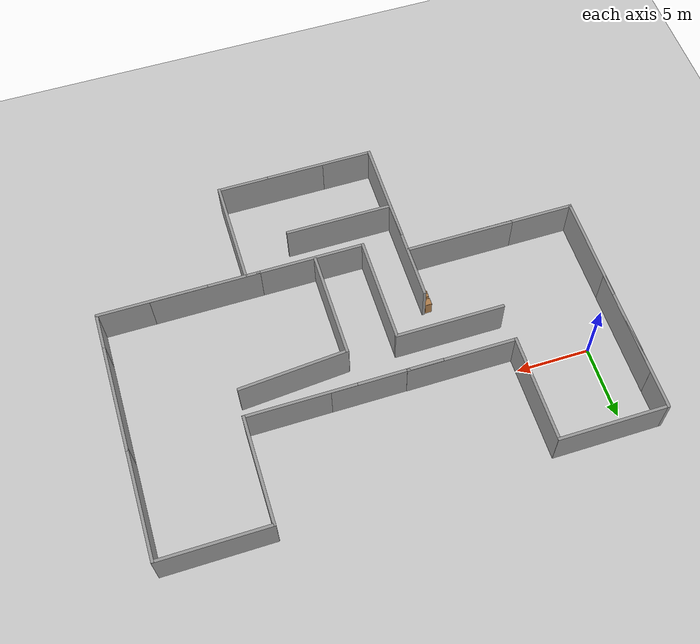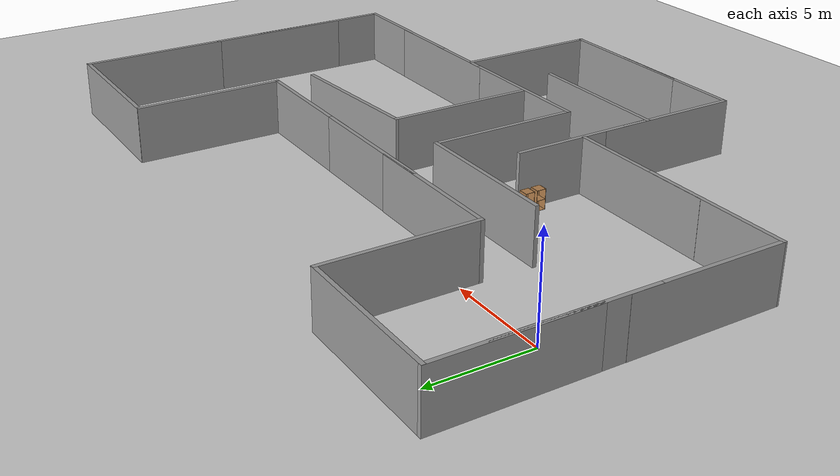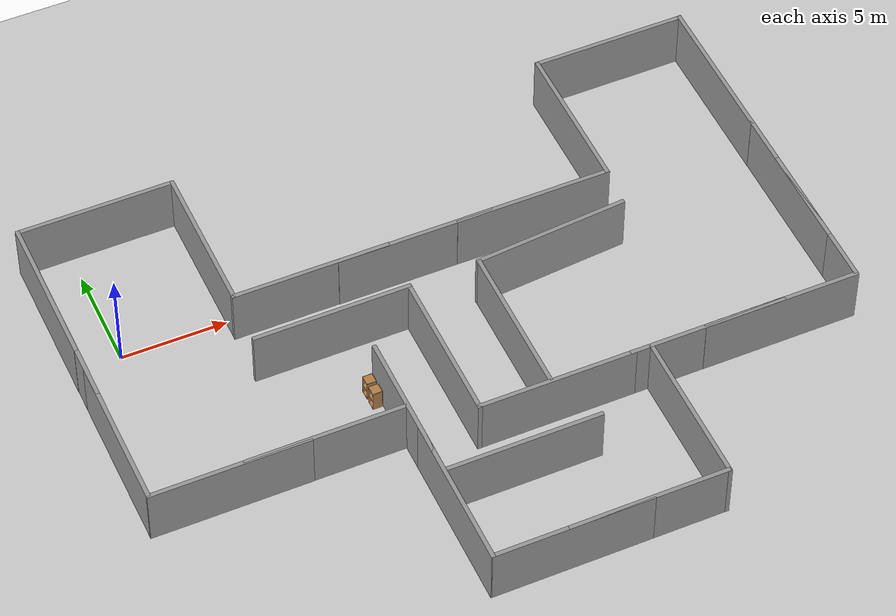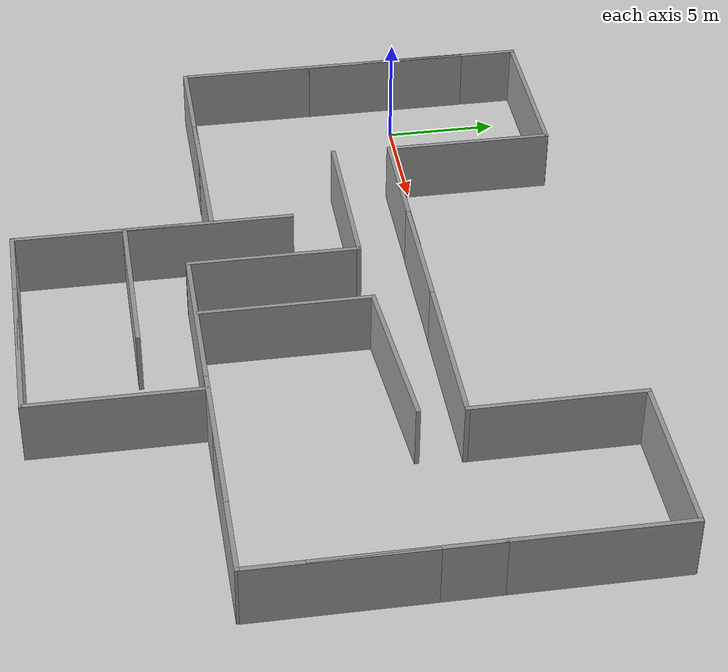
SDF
<sdf version="1.6">
 <world name="default">
  <model name="ground_plane">
   <static>1</static>
   <link name="link">
    <collision name="collision">
     <geometry><plane><normal>0 0 1</normal><size>100 100</size></plane></geometry>
     <surface><friction><ode><mu>100</mu><mu2>50</mu2></ode></friction></surface>
    </collision>
    <visual name="visual">
     <cast_shadows>0</cast_shadows>
     <geometry><plane><normal>0 0 1</normal><size>100 100</size></plane></geometry>
     <material>
      <script><uri>file://media/materials/scripts/gazebo.material</uri><name>Gazebo/Grey</name></script>
     </material>
    </visual>
   </link>
  </model>
  <model name="grey_wall">
   <static>1</static>
   <link name="link">
    <pose>0 0 1.4 0 -0 0</pose>
    <collision name="collision"><geometry><box><size>7.5 0.2 2.8</size></box></geometry></collision>
    <visual name="visual">
     <cast_shadows>0</cast_shadows>
     <geometry><box><size>7.5 0.2 2.8</size></box></geometry>
     <material>
      <script>
       <uri>model://grey_wall/materials/scripts</uri>
       <uri>model://grey_wall/materials/textures</uri>
       <name>vrc/grey_wall</name>
      </script>
     </material>
    </visual>
   </link>
   <pose>1.40551 6.37149 0 0 -0 0</pose>
  </model>
  <model name="grey_wall_0">
   <static>1</static>
   <link name="link">
    <pose>0 0 1.4 0 -0 0</pose>
    <collision name="collision"><geometry><box><size>7.5 0.2 2.8</size></box></geometry></collision>
    <visual name="visual">
     <cast_shadows>0</cast_shadows>
     <geometry><box><size>7.5 0.2 2.8</size></box></geometry>
     <material>
      <script>
       <uri>model://grey_wall/materials/scripts</uri>
       <uri>model://grey_wall/materials/textures</uri>
       <name>vrc/grey_wall</name>
      </script>
     </material>
    </visual>
   </link>
   <pose>8.62189 -3.53351 0 0 -0 0</pose>
  </model>
  <model name="grey_wall_0_clone">
   <static>1</static>
   <link name="link">
    <pose>0 0 1.4 0 -0 0</pose>
    <collision name="collision"><geometry><box><size>7.5 0.2 2.8</size></box></geometry></collision>
    <visual name="visual">
     <cast_shadows>0</cast_shadows>
     <geometry><box><size>7.5 0.2 2.8</size></box></geometry>
     <material>
      <script>
       <uri>model://grey_wall/materials/scripts</uri>
       <uri>model://grey_wall/materials/textures</uri>
       <name>vrc/grey_wall</name>
      </script>
     </material>
    </visual>
   </link>
   <pose>19.4528 -0.975786 0 0 -0 0</pose>
  </model>
  <model name="grey_wall_0_clone_0">
   <static>1</static>
   <link name="link">
    <pose>0 0 1.4 0 -0 0</pose>
    <collision name="collision"><geometry><box><size>7.5 0.2 2.8</size></box></geometry></collision>
    <visual name="visual">
     <cast_shadows>0</cast_shadows>
     <geometry><box><size>7.5 0.2 2.8</size></box></geometry>
     <material>
      <script>
       <uri>model://grey_wall/materials/scripts</uri>
       <uri>model://grey_wall/materials/textures</uri>
       <name>vrc/grey_wall</name>
      </script>
     </material>
    </visual>
   </link>
   <pose>26.7858 6.34842 0 0 -0 0</pose>
  </model>
  <model name="grey_wall_0_clone_1">
   <static>1</static>
   <link name="link">
    <pose>0 0 1.4 0 -0 0</pose>
    <collision name="collision"><geometry><box><size>7.5 0.2 2.8</size></box></geometry></collision>
    <visual name="visual">
     <cast_shadows>0</cast_shadows>
     <geometry><box><size>7.5 0.2 2.8</size></box></geometry>
     <material>
      <script>
       <uri>model://grey_wall/materials/scripts</uri>
       <uri>model://grey_wall/materials/textures</uri>
       <name>vrc/grey_wall</name>
      </script>
     </material>
    </visual>
   </link>
   <pose>16.6785 -18.265 0 0 -0 0</pose>
  </model>
  <model name="grey_wall_0_clone_2">
   <static>1</static>
   <link name="link">
    <pose>0 0 1.4 0 -0 0</pose>
    <collision name="collision"><geometry><box><size>7.5 0.2 2.8</size></box></geometry></collision>
    <visual name="visual">
     <cast_shadows>0</cast_shadows>
     <geometry><box><size>7.5 0.2 2.8</size></box></geometry>
     <material>
      <script>
       <uri>model://grey_wall/materials/scripts</uri>
       <uri>model://grey_wall/materials/textures</uri>
       <name>vrc/grey_wall</name>
      </script>
     </material>
    </visual>
   </link>
   <pose>5.72727 -9.6042 0 0 -0 0</pose>
  </model>
  <model name="grey_wall_0_clone_3">
   <static>1</static>
   <link name="link">
    <pose>0 0 1.4 0 -0 0</pose>
    <collision name="collision"><geometry><box><size>7.5 0.2 2.8</size></box></geometry></collision>
    <visual name="visual">
     <cast_shadows>0</cast_shadows>
     <geometry><box><size>7.5 0.2 2.8</size></box></geometry>
     <material>
      <script>
       <uri>model://grey_wall/materials/scripts</uri>
       <uri>model://grey_wall/materials/textures</uri>
       <name>vrc/grey_wall</name>
      </script>
     </material>
    </visual>
   </link>
   <pose>13.1413 -13.3999 0 0 -0 0</pose>
  </model>
  <model name="grey_wall_0_clone_4">
   <static>1</static>
   <link name="link">
    <pose>0 0 1.4 0 -0 0</pose>
    <collision name="collision"><geometry><box><size>7.5 0.2 2.8</size></box></geometry></collision>
    <visual name="visual">
     <cast_shadows>0</cast_shadows>
     <geometry><box><size>7.5 0.2 2.8</size></box></geometry>
     <material>
      <script>
       <uri>model://grey_wall/materials/scripts</uri>
       <uri>model://grey_wall/materials/textures</uri>
       <name>vrc/grey_wall</name>
      </script>
     </material>
    </visual>
   </link>
   <pose>1.3488 -9.61246 0 0 -0 0</pose>
  </model>
  <model name="grey_wall_0_clone_5">
   <static>1</static>
   <link name="link">
    <pose>0 0 1.4 0 -0 0</pose>
    <collision name="collision"><geometry><box><size>7.5 0.2 2.8</size></box></geometry></collision>
    <visual name="visual">
     <cast_shadows>0</cast_shadows>
     <geometry><box><size>7.5 0.2 2.8</size></box></geometry>
     <material>
      <script>
       <uri>model://grey_wall/materials/scripts</uri>
       <uri>model://grey_wall/materials/textures</uri>
       <name>vrc/grey_wall</name>
      </script>
     </material>
    </visual>
   </link>
   <pose>-2.26973 0.113719 0 0 0 -1.57327</pose>
  </model>
  <model name="grey_wall_0_clone_6">
   <static>1</static>
   <link name="link">
    <pose>0 0 1.4 0 -0 0</pose>
    <collision name="collision"><geometry><box><size>7.5 0.2 2.8</size></box></geometry></collision>
    <visual name="visual">
     <cast_shadows>0</cast_shadows>
     <geometry><box><size>7.5 0.2 2.8</size></box></geometry>
     <material>
      <script>
       <uri>model://grey_wall/materials/scripts</uri>
       <uri>model://grey_wall/materials/textures</uri>
       <name>vrc/grey_wall</name>
      </script>
     </material>
    </visual>
   </link>
   <pose>13.7149 -0.971329 0 0 -0 0</pose>
  </model>
  <model name="grey_wall_0_clone_7">
   <static>1</static>
   <link name="link">
    <pose>0 0 1.4 0 -0 0</pose>
    <collision name="collision"><geometry><box><size>7.5 0.2 2.8</size></box></geometry></collision>
    <visual name="visual">
     <cast_shadows>0</cast_shadows>
     <geometry><box><size>7.5 0.2 2.8</size></box></geometry>
     <material>
      <script>
       <uri>model://grey_wall/materials/scripts</uri>
       <uri>model://grey_wall/materials/textures</uri>
       <name>vrc/grey_wall</name>
      </script>
     </material>
    </visual>
   </link>
   <pose>26.7391 -10.9079 0 0 -0 0</pose>
  </model>
  <model name="grey_wall_0_clone_8">
   <static>1</static>
   <link name="link">
    <pose>0 0 1.4 0 -0 0</pose>
    <collision name="collision"><geometry><box><size>7.5 0.2 2.8</size></box></geometry></collision>
    <visual name="visual">
     <cast_shadows>0</cast_shadows>
     <geometry><box><size>7.5 0.2 2.8</size></box></geometry>
     <material>
      <script>
       <uri>model://grey_wall/materials/scripts</uri>
       <uri>model://grey_wall/materials/textures</uri>
       <name>vrc/grey_wall</name>
      </script>
     </material>
    </visual>
   </link>
   <pose>8.69545 -0.954139 0 0 -0 0</pose>
  </model>
  <model name="grey_wall_0_clone_9">
   <static>1</static>
   <link name="link">
    <pose>0 0 1.4 0 -0 0</pose>
    <collision name="collision"><geometry><box><size>7.5 0.2 2.8</size></box></geometry></collision>
    <visual name="visual">
     <cast_shadows>0</cast_shadows>
     <geometry><box><size>7.5 0.2 2.8</size></box></geometry>
     <material>
      <script>
       <uri>model://grey_wall/materials/scripts</uri>
       <uri>model://grey_wall/materials/textures</uri>
       <name>vrc/grey_wall</name>
      </script>
     </material>
    </visual>
   </link>
   <pose>15.9117 -10.903 0 0 -0 0</pose>
  </model>
  <model name="grey_wall_0_clone_10">
   <static>1</static>
   <link name="link">
    <pose>0 0 1.4 0 -0 0</pose>
    <collision name="collision"><geometry><box><size>7.5 0.2 2.8</size></box></geometry></collision>
    <visual name="visual">
     <cast_shadows>0</cast_shadows>
     <geometry><box><size>7.5 0.2 2.8</size></box></geometry>
     <material>
      <script>
       <uri>model://grey_wall/materials/scripts</uri>
       <uri>model://grey_wall/materials/textures</uri>
       <name>vrc/grey_wall</name>
      </script>
     </material>
    </visual>
   </link>
   <pose>19.2703 -3.18878 0 0 -0 0.076491</pose>
  </model>
  <model name="grey_wall_0_clone_11">
   <static>1</static>
   <link name="link">
    <pose>0 0 1.4 0 -0 0</pose>
    <collision name="collision"><geometry><box><size>7.5 0.2 2.8</size></box></geometry></collision>
    <visual name="visual">
     <cast_shadows>0</cast_shadows>
     <geometry><box><size>7.5 0.2 2.8</size></box></geometry>
     <material>
      <script>
       <uri>model://grey_wall/materials/scripts</uri>
       <uri>model://grey_wall/materials/textures</uri>
       <name>vrc/grey_wall</name>
      </script>
     </material>
    </visual>
   </link>
   <pose>23.1445 -10.9011 0 0 -0 0</pose>
  </model>
  <model name="grey_wall_0_clone_5_clone">
   <static>1</static>
   <link name="link">
    <pose>0 0 1.4 0 -0 0</pose>
    <collision name="collision"><geometry><box><size>7.5 0.2 2.8</size></box></geometry></collision>
    <visual name="visual">
     <cast_shadows>0</cast_shadows>
     <geometry><box><size>7.5 0.2 2.8</size></box></geometry>
     <material>
      <script>
       <uri>model://grey_wall/materials/scripts</uri>
       <uri>model://grey_wall/materials/textures</uri>
       <name>vrc/grey_wall</name>
      </script>
     </material>
    </visual>
   </link>
   <pose>5.05606 2.70407 0 0 0 -1.57327</pose>
  </model>
  <model name="grey_wall_0_clone_5_clone_0">
   <static>1</static>
   <link name="link">
    <pose>0 0 1.4 0 -0 0</pose>
    <collision name="collision"><geometry><box><size>7.5 0.2 2.8</size></box></geometry></collision>
    <visual name="visual">
     <cast_shadows>0</cast_shadows>
     <geometry><box><size>7.5 0.2 2.8</size></box></geometry>
     <material>
      <script>
       <uri>model://grey_wall/materials/scripts</uri>
       <uri>model://grey_wall/materials/textures</uri>
       <name>vrc/grey_wall</name>
      </script>
     </material>
    </visual>
   </link>
   <pose>-2.26973 2.72192 0 0 0 -1.57327</pose>
  </model>
  <model name="grey_wall_0_clone_5_clone_1">
   <static>1</static>
   <link name="link">
    <pose>0 0 1.4 0 -0 0</pose>
    <collision name="collision"><geometry><box><size>7.5 0.2 2.8</size></box></geometry></collision>
    <visual name="visual">
     <cast_shadows>0</cast_shadows>
     <geometry><box><size>7.5 0.2 2.8</size></box></geometry>
     <material>
      <script>
       <uri>model://grey_wall/materials/scripts</uri>
       <uri>model://grey_wall/materials/textures</uri>
       <name>vrc/grey_wall</name>
      </script>
     </material>
    </visual>
   </link>
   <pose>30.4144 -4.65349 0 0 0 -1.57327</pose>
  </model>
  <model name="grey_wall_0_clone_5_clone_2">
   <static>1</static>
   <link name="link">
    <pose>0 0 1.4 0 -0 0</pose>
    <collision name="collision"><geometry><box><size>7.5 0.2 2.8</size></box></geometry></collision>
    <visual name="visual">
     <cast_shadows>0</cast_shadows>
     <geometry><box><size>7.5 0.2 2.8</size></box></geometry>
     <material>
      <script>
       <uri>model://grey_wall/materials/scripts</uri>
       <uri>model://grey_wall/materials/textures</uri>
       <name>vrc/grey_wall</name>
      </script>
     </material>
    </visual>
   </link>
   <pose>30.429 2.68242 0 0 0 -1.57327</pose>
  </model>
  <model name="grey_wall_0_clone_5_clone_3">
   <static>1</static>
   <link name="link">
    <pose>0 0 1.4 0 -0 0</pose>
    <collision name="collision"><geometry><box><size>7.5 0.2 2.8</size></box></geometry></collision>
    <visual name="visual">
     <cast_shadows>0</cast_shadows>
     <geometry><box><size>7.5 0.2 2.8</size></box></geometry>
     <material>
      <script>
       <uri>model://grey_wall/materials/scripts</uri>
       <uri>model://grey_wall/materials/textures</uri>
       <name>vrc/grey_wall</name>
      </script>
     </material>
    </visual>
   </link>
   <pose>12.2546 -7.25538 0 0 0 -1.57327</pose>
  </model>
  <model name="grey_wall_0_clone_5_clone_4">
   <static>1</static>
   <link name="link">
    <pose>0 0 1.4 0 -0 0</pose>
    <collision name="collision"><geometry><box><size>7.5 0.2 2.8</size></box></geometry></collision>
    <visual name="visual">
     <cast_shadows>0</cast_shadows>
     <geometry><box><size>7.5 0.2 2.8</size></box></geometry>
     <material>
      <script>
       <uri>model://grey_wall/materials/scripts</uri>
       <uri>model://grey_wall/materials/textures</uri>
       <name>vrc/grey_wall</name>
      </script>
     </material>
    </visual>
   </link>
   <pose>15.6277 -7.12355 0 0 0 -1.57327</pose>
  </model>
  <model name="grey_wall_0_clone_5_clone_2_clone">
   <static>1</static>
   <link name="link">
    <pose>0 0 1.4 0 -0 0</pose>
    <collision name="collision"><geometry><box><size>7.5 0.2 2.8</size></box></geometry></collision>
    <visual name="visual">
     <cast_shadows>0</cast_shadows>
     <geometry><box><size>7.5 0.2 2.8</size></box></geometry>
     <material>
      <script>
       <uri>model://grey_wall/materials/scripts</uri>
       <uri>model://grey_wall/materials/textures</uri>
       <name>vrc/grey_wall</name>
      </script>
     </material>
    </visual>
   </link>
   <pose>23.1089 2.69179 0 0 0 -1.57327</pose>
  </model>
  <model name="grey_wall_0_clone_5_clone_2_clone_0">
   <static>1</static>
   <link name="link">
    <pose>0 0 1.4 0 -0 0</pose>
    <collision name="collision"><geometry><box><size>7.5 0.2 2.8</size></box></geometry></collision>
    <visual name="visual">
     <cast_shadows>0</cast_shadows>
     <geometry><box><size>7.5 0.2 2.8</size></box></geometry>
     <material>
      <script>
       <uri>model://grey_wall/materials/scripts</uri>
       <uri>model://grey_wall/materials/textures</uri>
       <name>vrc/grey_wall</name>
      </script>
     </material>
    </visual>
   </link>
   <pose>20.3846 -14.6194 0 0 0 -1.57327</pose>
  </model>
  <model name="grey_wall_0_clone_5_clone_2_clone_2">
   <static>1</static>
   <link name="link">
    <pose>0 0 1.4 0 -0 0</pose>
    <collision name="collision"><geometry><box><size>7.5 0.2 2.8</size></box></geometry></collision>
    <visual name="visual">
     <cast_shadows>0</cast_shadows>
     <geometry><box><size>7.5 0.2 2.8</size></box></geometry>
     <material>
      <script>
       <uri>model://grey_wall/materials/scripts</uri>
       <uri>model://grey_wall/materials/textures</uri>
       <name>vrc/grey_wall</name>
      </script>
     </material>
    </visual>
   </link>
   <pose>9.47934 -14.6107 0 0 0 -1.57327</pose>
  </model>
  <model name="grey_wall_0_clone_5_clone_2_clone_3">
   <static>1</static>
   <link name="link">
    <pose>0 0 1.4 0 -0 0</pose>
    <collision name="collision"><geometry><box><size>7.5 0.2 2.8</size></box></geometry></collision>
    <visual name="visual">
     <cast_shadows>0</cast_shadows>
     <geometry><box><size>7.5 0.2 2.8</size></box></geometry>
     <material>
      <script>
       <uri>model://grey_wall/materials/scripts</uri>
       <uri>model://grey_wall/materials/textures</uri>
       <name>vrc/grey_wall</name>
      </script>
     </material>
    </visual>
   </link>
   <pose>-2.29242 -5.87108 0 0 0 -1.57327</pose>
  </model>
  <model name="grey_wall_0_clone_5_clone_2_clone_4">
   <static>1</static>
   <link name="link">
    <pose>0 0 1.4 0 -0 0</pose>
    <collision name="collision"><geometry><box><size>7.5 0.2 2.8</size></box></geometry></collision>
    <visual name="visual">
     <cast_shadows>0</cast_shadows>
     <geometry><box><size>7.5 0.2 2.8</size></box></geometry>
     <material>
      <script>
       <uri>model://grey_wall/materials/scripts</uri>
       <uri>model://grey_wall/materials/textures</uri>
       <name>vrc/grey_wall</name>
      </script>
     </material>
    </visual>
   </link>
   <pose>30.4088 -7.14473 0 0 0 -1.57327</pose>
  </model>
  <model name="grey_wall_0_clone_5_clone_2_clone_5">
   <static>1</static>
   <link name="link">
    <pose>0 0 1.4 0 -0 0</pose>
    <collision name="collision"><geometry><box><size>7.5 0.2 2.8</size></box></geometry></collision>
    <visual name="visual">
     <cast_shadows>0</cast_shadows>
     <geometry><box><size>7.5 0.2 2.8</size></box></geometry>
     <material>
      <script>
       <uri>model://grey_wall/materials/scripts</uri>
       <uri>model://grey_wall/materials/textures</uri>
       <name>vrc/grey_wall</name>
      </script>
     </material>
    </visual>
   </link>
   <pose>9.49351 -9.75281 0 0 0 -1.57327</pose>
  </model>
  <model name="grey_wall_0_clone_1_clone">
   <static>1</static>
   <link name="link">
    <pose>0 0 1.4 0 -0 0</pose>
    <collision name="collision"><geometry><box><size>7.5 0.2 2.8</size></box></geometry></collision>
    <visual name="visual">
     <cast_shadows>0</cast_shadows>
     <geometry><box><size>7.5 0.2 2.8</size></box></geometry>
     <material>
      <script>
       <uri>model://grey_wall/materials/scripts</uri>
       <uri>model://grey_wall/materials/textures</uri>
       <name>vrc/grey_wall</name>
      </script>
     </material>
    </visual>
   </link>
   <pose>13.1643 -18.2661 0 0 -0 0</pose>
  </model>
  <model name="cabinet">
   <static>1</static>
   <link name="cabinet_bottom_plate">
    <inertial>
     <pose>0 0 -1 0 -0 0</pose>
     <inertia><ixx>2.05</ixx><ixy>0</ixy><ixz>0</ixz><iyy>2.05</iyy><iyz>0</iyz><izz>2.05</izz></inertia>
     <mass>25</mass>
    </inertial>
    <collision name="cabinet_bottom_plate_geom">
     <pose>0 0 0.01 0 -0 0</pose>
     <geometry><box><size>0.45 0.45 0.02</size></box></geometry>
    </collision>
    <visual name="cabinet_bottom_plate_geom_visual">
     <pose>0 0 0.01 0 -0 0</pose>
     <geometry><box><size>0.45 0.45 0.02</size></box></geometry>
     <material>
      <script><uri>file://media/materials/scripts/gazebo.material</uri><name>Gazebo/Wood</name></script>
     </material>
    </visual>
    <collision name="cabinet_bottom_plate_geom_cabinet_back_plate">
     <pose>0.235 0 0.51 0 -0 0</pose>
     <geometry><box><size>0.02 0.45 1.02</size></box></geometry>
    </collision>
    <visual name="cabinet_bottom_plate_geom_cabinet_back_plate_visual">
     <pose>0.235 0 0.51 0 -0 0</pose>
     <geometry><box><size>0.02 0.45 1.02</size></box></geometry>
     <material>
      <script><uri>file://media/materials/scripts/gazebo.material</uri><name>Gazebo/Wood</name></script>
     </material>
    </visual>
    <collision name="cabinet_bottom_plate_geom_cabinet_left_plate">
     <pose>0 0.235 0.51 0 -0 0</pose>
     <geometry><box><size>0.45 0.02 1.02</size></box></geometry>
    </collision>
    <visual name="cabinet_bottom_plate_geom_cabinet_left_plate_visual">
     <pose>0 0.235 0.51 0 -0 0</pose>
     <geometry><box><size>0.45 0.02 1.02</size></box></geometry>
     <material>
      <script><uri>file://media/materials/scripts/gazebo.material</uri><name>Gazebo/Wood</name></script>
     </material>
    </visual>
    <collision name="cabinet_bottom_plate_geom_cabinet_middle_plate">
     <pose>0 0 0.51 0 -0 0</pose>
     <geometry><box><size>0.45 0.45 0.02</size></box></geometry>
    </collision>
    <visual name="cabinet_bottom_plate_geom_cabinet_middle_plate_visual">
     <pose>0 0 0.51 0 -0 0</pose>
     <geometry><box><size>0.45 0.45 0.02</size></box></geometry>
     <material>
      <script><uri>file://media/materials/scripts/gazebo.material</uri><name>Gazebo/Wood</name></script>
     </material>
    </visual>
    <collision name="cabinet_bottom_plate_geom_cabinet_right_plate">
     <pose>0 -0.235 0.51 0 -0 0</pose>
     <geometry><box><size>0.45 0.02 1.02</size></box></geometry>
    </collision>
    <visual name="cabinet_bottom_plate_geom_cabinet_right_plate_visual">
     <pose>0 -0.235 0.51 0 -0 0</pose>
     <geometry><box><size>0.45 0.02 1.02</size></box></geometry>
     <material>
      <script><uri>file://media/materials/scripts/gazebo.material</uri><name>Gazebo/Wood</name></script>
     </material>
    </visual>
    <collision name="cabinet_bottom_plate_geom_cabinet_top_plate">
     <pose>0 0 1.01 0 -0 0</pose>
     <geometry><box><size>0.45 0.45 0.02</size></box></geometry>
    </collision>
    <visual name="cabinet_bottom_plate_geom_cabinet_top_plate_visual">
     <pose>0 0 1.01 0 -0 0</pose>
     <geometry><box><size>0.45 0.45 0.02</size></box></geometry>
     <material>
      <script><uri>file://media/materials/scripts/gazebo.material</uri><name>Gazebo/Wood</name></script>
     </material>
    </visual>
   </link>
   <pose>9.13266 -6.30427 0 0 -0 0</pose>
  </model>
  <model name="cabinet_0">
   <static>1</static>
   <link name="cabinet_bottom_plate">
    <inertial>
     <pose>0 0 -1 0 -0 0</pose>
     <inertia><ixx>2.05</ixx><ixy>0</ixy><ixz>0</ixz><iyy>2.05</iyy><iyz>0</iyz><izz>2.05</izz></inertia>
     <mass>25</mass>
    </inertial>
    <collision name="cabinet_bottom_plate_geom">
     <pose>0 0 0.01 0 -0 0</pose>
     <geometry><box><size>0.45 0.45 0.02</size></box></geometry>
    </collision>
    <visual name="cabinet_bottom_plate_geom_visual">
     <pose>0 0 0.01 0 -0 0</pose>
     <geometry><box><size>0.45 0.45 0.02</size></box></geometry>
     <material>
      <script><uri>file://media/materials/scripts/gazebo.material</uri><name>Gazebo/Wood</name></script>
     </material>
    </visual>
    <collision name="cabinet_bottom_plate_geom_cabinet_back_plate">
     <pose>0.235 0 0.51 0 -0 0</pose>
     <geometry><box><size>0.02 0.45 1.02</size></box></geometry>
    </collision>
    <visual name="cabinet_bottom_plate_geom_cabinet_back_plate_visual">
     <pose>0.235 0 0.51 0 -0 0</pose>
     <geometry><box><size>0.02 0.45 1.02</size></box></geometry>
     <material>
      <script><uri>file://media/materials/scripts/gazebo.material</uri><name>Gazebo/Wood</name></script>
     </material>
    </visual>
    <collision name="cabinet_bottom_plate_geom_cabinet_left_plate">
     <pose>0 0.235 0.51 0 -0 0</pose>
     <geometry><box><size>0.45 0.02 1.02</size></box></geometry>
    </collision>
    <visual name="cabinet_bottom_plate_geom_cabinet_left_plate_visual">
     <pose>0 0.235 0.51 0 -0 0</pose>
     <geometry><box><size>0.45 0.02 1.02</size></box></geometry>
     <material>
      <script><uri>file://media/materials/scripts/gazebo.material</uri><name>Gazebo/Wood</name></script>
     </material>
    </visual>
    <collision name="cabinet_bottom_plate_geom_cabinet_middle_plate">
     <pose>0 0 0.51 0 -0 0</pose>
     <geometry><box><size>0.45 0.45 0.02</size></box></geometry>
    </collision>
    <visual name="cabinet_bottom_plate_geom_cabinet_middle_plate_visual">
     <pose>0 0 0.51 0 -0 0</pose>
     <geometry><box><size>0.45 0.45 0.02</size></box></geometry>
     <material>
      <script><uri>file://media/materials/scripts/gazebo.material</uri><name>Gazebo/Wood</name></script>
     </material>
    </visual>
    <collision name="cabinet_bottom_plate_geom_cabinet_right_plate">
     <pose>0 -0.235 0.51 0 -0 0</pose>
     <geometry><box><size>0.45 0.02 1.02</size></box></geometry>
    </collision>
    <visual name="cabinet_bottom_plate_geom_cabinet_right_plate_visual">
     <pose>0 -0.235 0.51 0 -0 0</pose>
     <geometry><box><size>0.45 0.02 1.02</size></box></geometry>
     <material>
      <script><uri>file://media/materials/scripts/gazebo.material</uri><name>Gazebo/Wood</name></script>
     </material>
    </visual>
    <collision name="cabinet_bottom_plate_geom_cabinet_top_plate">
     <pose>0 0 1.01 0 -0 0</pose>
     <geometry><box><size>0.45 0.45 0.02</size></box></geometry>
    </collision>
    <visual name="cabinet_bottom_plate_geom_cabinet_top_plate_visual">
     <pose>0 0 1.01 0 -0 0</pose>
     <geometry><box><size>0.45 0.45 0.02</size></box></geometry>
     <material>
      <script><uri>file://media/materials/scripts/gazebo.material</uri><name>Gazebo/Wood</name></script>
     </material>
    </visual>
   </link>
   <pose>9.14272 -6.9293 0 0 -0 0</pose>
  </model>
 </world>
</sdf>
